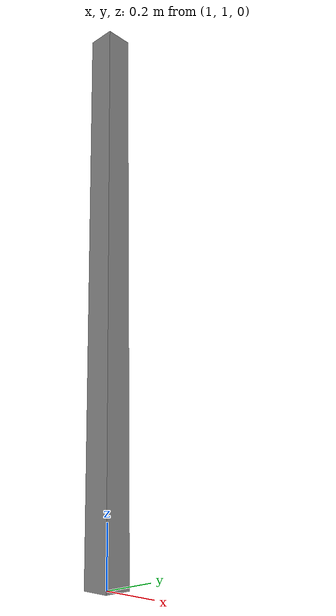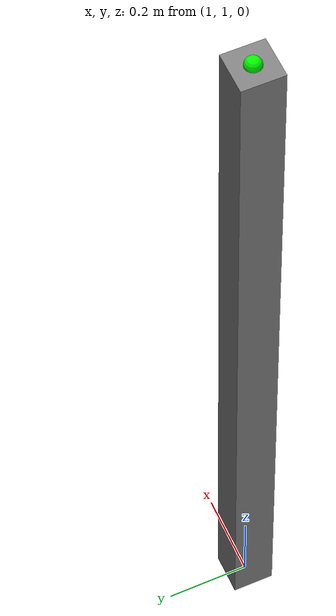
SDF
<?xml version="1.0"?>
<sdf version="1.7">
  <model name="pillar">
    <static>true</static>  <!-- Make the pillar static -->
    <pose>1.0 1.0 1.0 0 0 0</pose>  <!-- Position of the pillar -->
    <link name="pillar_link">
      <visual name="visual">
        <geometry>
          <box>
            <size>0.1 0.1 2.0</size>  <!-- Dimensions of the pillar -->
          </box>
        </geometry>
        <material>
          <ambient>0.5 0.5 0.5 1</ambient>  <!-- Gray color -->
        </material>
      </visual>
      <collision name="collision">
        <geometry>
          <box>
            <size>0.1 0.1 2.0</size>  <!-- Collision geometry -->
          </box>
        </geometry>
      </collision>
    </link>
    <link name="attachment_point_1">
      <pose>0 0 1.0 0 0 0</pose>  <!-- Position of the attachment point -->
      <visual name="ap1_visual">
        <geometry>
          <sphere>
            <radius>0.02</radius>  <!-- Sphere radius -->
          </sphere>
        </geometry>
        <material>
          <ambient>0 1 0 1</ambient>  <!-- Green color -->
        </material>
      </visual>
      <collision name="ap1_collision">
        <geometry>
          <sphere>
            <radius>0.02</radius>  <!-- Collision geometry -->
          </sphere>
        </geometry>
      </collision>
    </link>
    <plugin name="pillar_pose_pub" filename="libgazebo_ros_p3d.so">
        <ros>
          <namespace>/pillar_1</namespace>
          <remapping>odom:=odo</remapping>
        </ros>
        <body_name>attachment_point_1</body_name>
        <frame_name>world</frame_name>
        <update_rate>120</update_rate>
    </plugin>
  </model>
</sdf>
